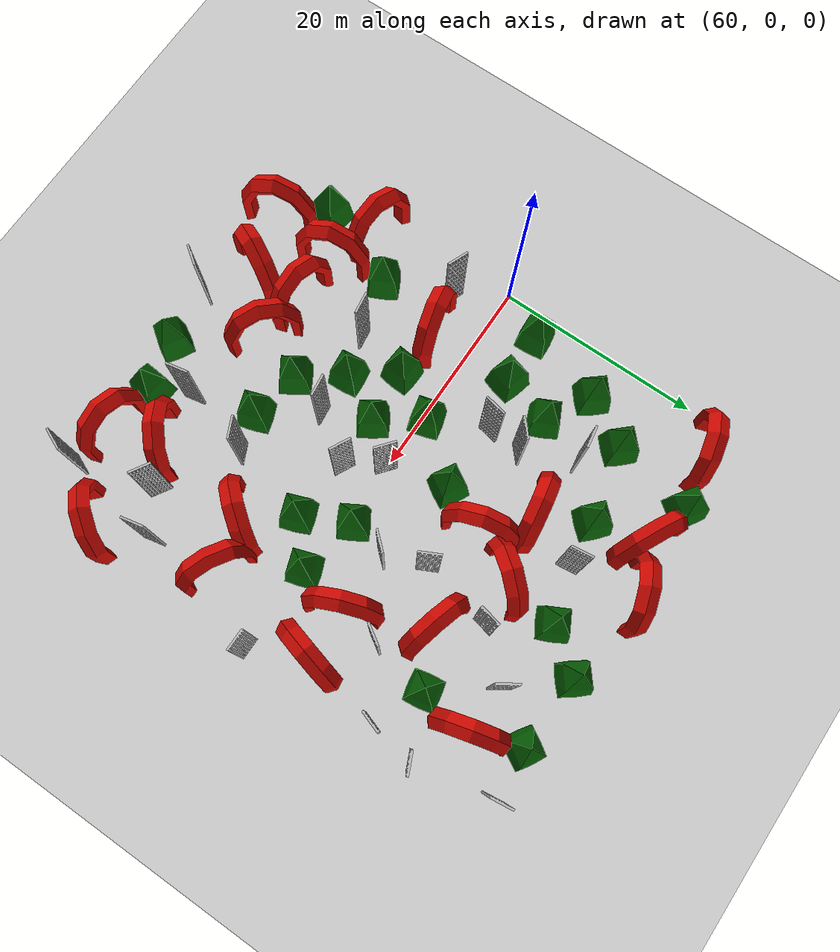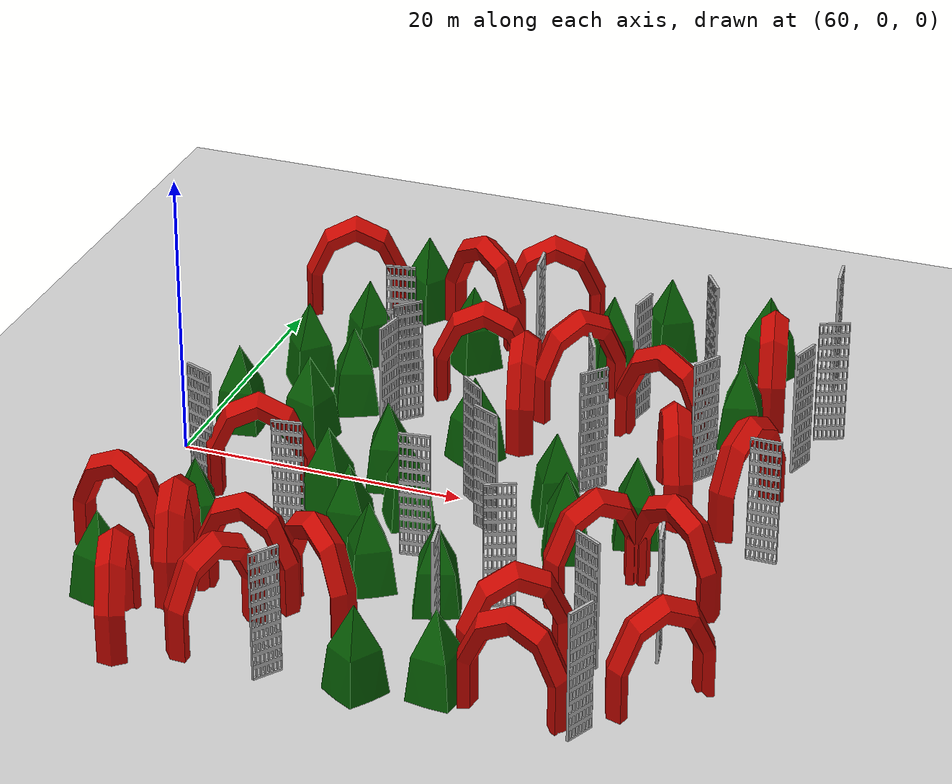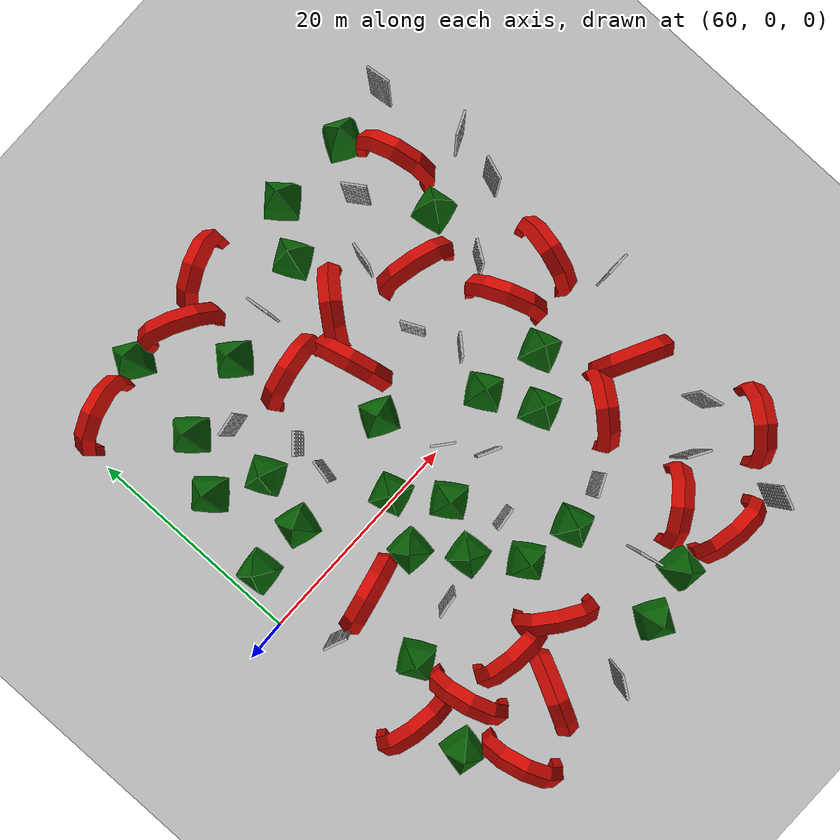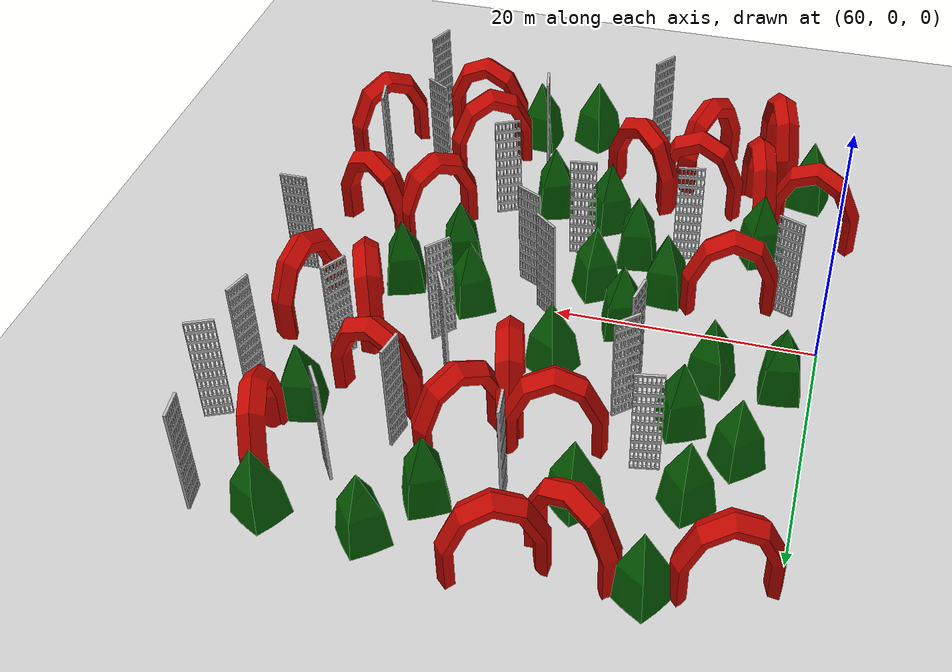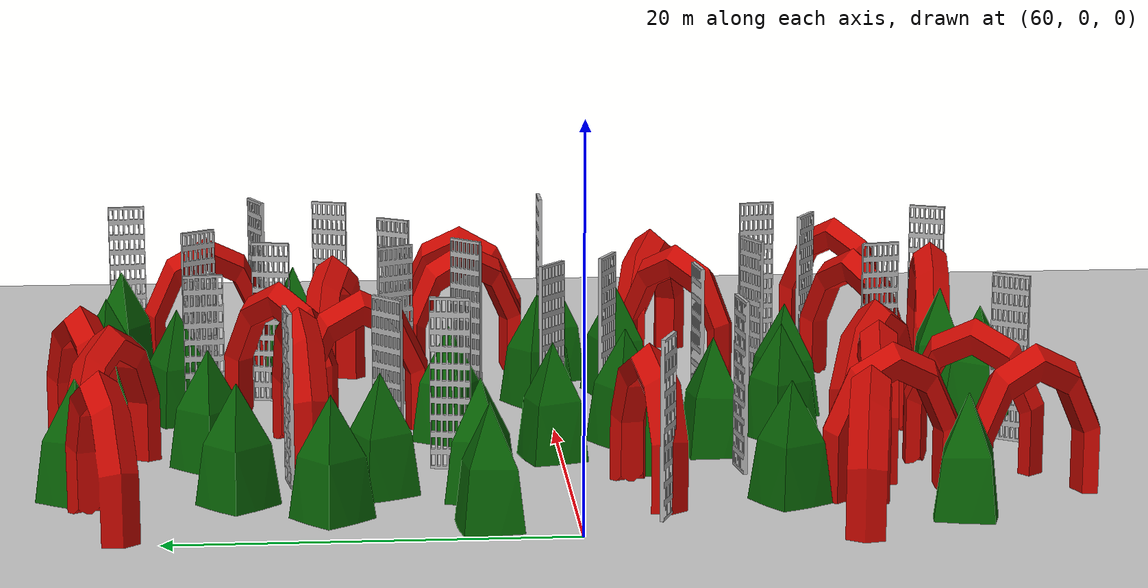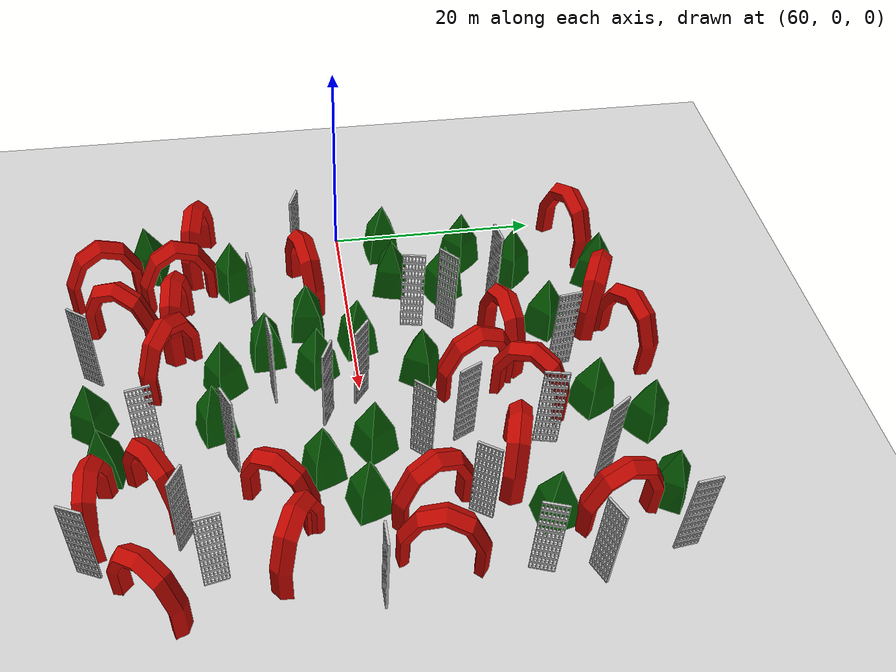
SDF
<sdf version="1.4">
 <world name="default">
  <model name="ground_plane">
   <static>1</static>
   <link name="link">
    <collision name="collision">
     <geometry><plane><normal>0 0 1</normal><size>1000 1000</size></plane></geometry>
     <surface>
      <contact><collide_bitmask>65535</collide_bitmask></contact>
      <friction><ode><mu>100</mu><mu2>50</mu2></ode></friction>
     </surface>
    </collision>
    <visual name="visual">
     <cast_shadows>0</cast_shadows>
     <geometry><plane><normal>0 0 1</normal><size>1000 1000</size></plane></geometry>
    </visual>
   </link>
  </model>
  <include><uri>model://sun</uri></include>
  <include>
   <name>mixedSimple Pyramid22</name>
   <uri>model://Simple Pyramid</uri>
   <pose>62.69142532348633 -18.87360954284668 0 0 0 2.12702026349</pose>
   <static>true</static>
  </include>
  <include>
   <name>mixedSimple U23</name>
   <uri>model://Simple U</uri>
   <pose>61.92953395843506 -13.926939010620117 0 0 0 2.9349056319</pose>
   <static>true</static>
  </include>
  <include>
   <name>mixedfence_high24</name>
   <uri>model://fence_high</uri>
   <pose>62.308427810668945 -3.829996109008789 0 0 0 4.32742791303</pose>
   <static>true</static>
  </include>
  <include>
   <name>mixedSimple Pyramid25</name>
   <uri>model://Simple Pyramid</uri>
   <pose>62.27036476135254 4.362066268920898 0 0 0 0.88870506989</pose>
   <static>true</static>
  </include>
  <include>
   <name>mixedSimple U26</name>
   <uri>model://Simple U</uri>
   <pose>63.4309778213501 22.87826156616211 0 0 0 3.46680885681</pose>
   <static>true</static>
  </include>
  <include>
   <name>mixedSimple U27</name>
   <uri>model://Simple U</uri>
   <pose>65.80026626586914 -22.7959988117218 0 0 0 5.02225994806</pose>
   <static>true</static>
  </include>
  <include>
   <name>mixedSimple U28</name>
   <uri>model://Simple U</uri>
   <pose>66.69957160949707 -15.845399856567383 0 0 0 1.82713218949</pose>
   <static>true</static>
  </include>
  <include>
   <name>mixedSimple Pyramid29</name>
   <uri>model://Simple Pyramid</uri>
   <pose>65.75212478637695 -10.69617748260498 0 0 0 4.42656693664</pose>
   <static>true</static>
  </include>
  <include>
   <name>mixedSimple U30</name>
   <uri>model://Simple U</uri>
   <pose>67.31329727172852 -3.793851852416992 0 0 0 3.36425186606</pose>
   <static>true</static>
  </include>
  <include>
   <name>mixedSimple Pyramid31</name>
   <uri>model://Simple Pyramid</uri>
   <pose>67.38118934631348 4.55036735534668 0 0 0 2.07798212356</pose>
   <static>true</static>
  </include>
  <include>
   <name>mixedSimple Pyramid32</name>
   <uri>model://Simple Pyramid</uri>
   <pose>64.32625675201416 11.917091369628906 0 0 0 4.63348301001</pose>
   <static>true</static>
  </include>
  <include>
   <name>mixedSimple Pyramid33</name>
   <uri>model://Simple Pyramid</uri>
   <pose>67.03865432739258 16.537723541259766 0 0 0 4.6808445286</pose>
   <static>true</static>
  </include>
  <include>
   <name>mixedfence_high34</name>
   <uri>model://fence_high</uri>
   <pose>70.46025276184082 -8.998071670532227 0 0 0 4.851507187</pose>
   <static>true</static>
  </include>
  <include>
   <name>mixedSimple Pyramid35</name>
   <uri>model://Simple Pyramid</uri>
   <pose>68.69615364074707 9.477005004882812 0 0 0 2.80884894409</pose>
   <static>true</static>
  </include>
  <include>
   <name>mixedSimple Pyramid36</name>
   <uri>model://Simple Pyramid</uri>
   <pose>68.5201416015625 24.49709701538086 0 0 0 1.76884780473</pose>
   <static>true</static>
  </include>
  <include>
   <name>mixedSimple U37</name>
   <uri>model://Simple U</uri>
   <pose>71.66048049926758 -21.025667667388916 0 0 0 4.24354867931</pose>
   <static>true</static>
  </include>
  <include>
   <name>mixedSimple U38</name>
   <uri>model://Simple U</uri>
   <pose>71.70149612426758 -16.020835876464844 0 0 0 6.15208009609</pose>
   <static>true</static>
  </include>
  <include>
   <name>mixedSimple Pyramid39</name>
   <uri>model://Simple Pyramid</uri>
   <pose>72.31304740905762 -4.023036956787109 0 0 0 0.703518569848</pose>
   <static>true</static>
  </include>
  <include>
   <name>mixedfence_high40</name>
   <uri>model://fence_high</uri>
   <pose>72.37782096862793 4.839656829833984 0 0 0 6.08317141128</pose>
   <static>true</static>
  </include>
  <include>
   <name>mixedfence_high41</name>
   <uri>model://fence_high</uri>
   <pose>73.69752502441406 9.667533874511719 0 0 0 2.30900363547</pose>
   <static>true</static>
  </include>
  <include>
   <name>mixedfence_high42</name>
   <uri>model://fence_high</uri>
   <pose>71.42465019226074 14.126689910888672 0 0 0 1.73502844009</pose>
   <static>true</static>
  </include>
  <include>
   <name>mixedSimple Pyramid43</name>
   <uri>model://Simple Pyramid</uri>
   <pose>74.32451438903809 18.206005096435547 0 0 0 3.18051259893</pose>
   <static>true</static>
  </include>
  <include>
   <name>mixedSimple U44</name>
   <uri>model://Simple U</uri>
   <pose>73.32940101623535 23.111083984375 0 0 0 5.82010574385</pose>
   <static>true</static>
  </include>
  <include>
   <name>mixedfence_high45</name>
   <uri>model://fence_high</uri>
   <pose>77.01993370056152 -23.087490797042847 0 0 0 2.52240929879</pose>
   <static>true</static>
  </include>
  <include>
   <name>mixedSimple U46</name>
   <uri>model://Simple U</uri>
   <pose>76.65982055664062 -16.70276927947998 0 0 0 2.51738836384</pose>
   <static>true</static>
  </include>
  <include>
   <name>mixedSimple Pyramid47</name>
   <uri>model://Simple Pyramid</uri>
   <pose>75.36297225952148 -7.991411209106445 0 0 0 0.882420831966</pose>
   <static>true</static>
  </include>
  <include>
   <name>mixedSimple Pyramid48</name>
   <uri>model://Simple Pyramid</uri>
   <pose>77.74067497253418 -3.587259292602539 0 0 0 6.07775613799</pose>
   <static>true</static>
  </include>
  <include>
   <name>mixedSimple Pyramid49</name>
   <uri>model://Simple Pyramid</uri>
   <pose>74.78360748291016 0.45078277587890625 0 0 0 2.62721673683</pose>
   <static>true</static>
  </include>
  <include>
   <name>mixedSimple U50</name>
   <uri>model://Simple U</uri>
   <pose>76.83550071716309 13.566654205322266 0 0 0 3.32010996093</pose>
   <static>true</static>
  </include>
  <include>
   <name>mixedSimple U51</name>
   <uri>model://Simple U</uri>
   <pose>78.00121879577637 24.906673431396484 0 0 0 0.398753828221</pose>
   <static>true</static>
  </include>
  <include>
   <name>mixedSimple Pyramid52</name>
   <uri>model://Simple Pyramid</uri>
   <pose>78.36404609680176 -11.99685287475586 0 0 0 6.06434222844</pose>
   <static>true</static>
  </include>
  <include>
   <name>mixedfence_high53</name>
   <uri>model://fence_high</uri>
   <pose>80.86540031433105 -7.661735534667969 0 0 0 1.69620847054</pose>
   <static>true</static>
  </include>
  <include>
   <name>mixedfence_high54</name>
   <uri>model://fence_high</uri>
   <pose>80.12895011901855 0.8111686706542969 0 0 0 4.03280473451</pose>
   <static>true</static>
  </include>
  <include>
   <name>mixedSimple Pyramid55</name>
   <uri>model://Simple Pyramid</uri>
   <pose>78.99737739562988 5.686573028564453 0 0 0 0.252388241747</pose>
   <static>true</static>
  </include>
  <include>
   <name>mixedSimple U56</name>
   <uri>model://Simple U</uri>
   <pose>80.87881088256836 10.324485778808594 0 0 0 4.95401477632</pose>
   <static>true</static>
  </include>
  <include>
   <name>mixedfence_high57</name>
   <uri>model://fence_high</uri>
   <pose>79.1141128540039 19.65850830078125 0 0 0 3.26891451822</pose>
   <static>true</static>
  </include>
  <include>
   <name>mixedSimple Pyramid58</name>
   <uri>model://Simple Pyramid</uri>
   <pose>82.00854873657227 -23.49215269088745 0 0 0 0.224913957299</pose>
   <static>true</static>
  </include>
  <include>
   <name>mixedfence_high59</name>
   <uri>model://fence_high</uri>
   <pose>85.27312088012695 -17.482858180999756 0 0 0 3.33643014413</pose>
   <static>true</static>
  </include>
  <include>
   <name>mixedSimple Pyramid60</name>
   <uri>model://Simple Pyramid</uri>
   <pose>83.28909301757812 -12.887898445129395 0 0 0 1.11440216981</pose>
   <static>true</static>
  </include>
  <include>
   <name>mixedfence_high61</name>
   <uri>model://fence_high</uri>
   <pose>83.86478805541992 -3.655029296875 0 0 0 1.10880368324</pose>
   <static>true</static>
  </include>
  <include>
   <name>mixedSimple U62</name>
   <uri>model://Simple U</uri>
   <pose>83.34615707397461 14.67905044555664 0 0 0 4.0005360816</pose>
   <static>true</static>
  </include>
  <include>
   <name>mixedSimple Pyramid63</name>
   <uri>model://Simple Pyramid</uri>
   <pose>84.07956314086914 20.286457061767578 0 0 0 4.4059240932</pose>
   <static>true</static>
  </include>
  <include>
   <name>mixedSimple Pyramid64</name>
   <uri>model://Simple Pyramid</uri>
   <pose>86.85235595703125 -22.23217749595642 0 0 0 5.38158184151</pose>
   <static>true</static>
  </include>
  <include>
   <name>mixedfence_high65</name>
   <uri>model://fence_high</uri>
   <pose>88.01100540161133 -11.228515625 0 0 0 2.00930985803</pose>
   <static>true</static>
  </include>
  <include>
   <name>mixedSimple Pyramid66</name>
   <uri>model://Simple Pyramid</uri>
   <pose>88.85335922241211 -4.060243606567383 0 0 0 5.85266278867</pose>
   <static>true</static>
  </include>
  <include>
   <name>mixedSimple Pyramid67</name>
   <uri>model://Simple Pyramid</uri>
   <pose>86.66329574584961 0.4944744110107422 0 0 0 1.31368434438</pose>
   <static>true</static>
  </include>
  <include>
   <name>mixedfence_high68</name>
   <uri>model://fence_high</uri>
   <pose>88.62298202514648 5.0998687744140625 0 0 0 2.41085727768</pose>
   <static>true</static>
  </include>
  <include>
   <name>mixedfence_high69</name>
   <uri>model://fence_high</uri>
   <pose>85.98606872558594 9.353893280029297 0 0 0 3.60200401491</pose>
   <static>true</static>
  </include>
  <include>
   <name>mixedfence_high70</name>
   <uri>model://fence_high</uri>
   <pose>88.10047149658203 16.24319076538086 0 0 0 2.93026521238</pose>
   <static>true</static>
  </include>
  <include>
   <name>mixedSimple Pyramid71</name>
   <uri>model://Simple Pyramid</uri>
   <pose>87.08010482788086 24.292301177978516 0 0 0 3.03816952569</pose>
   <static>true</static>
  </include>
  <include>
   <name>mixedSimple U72</name>
   <uri>model://Simple U</uri>
   <pose>91.85182189941406 -22.601258516311646 0 0 0 3.03706974732</pose>
   <static>true</static>
  </include>
  <include>
   <name>mixedSimple U73</name>
   <uri>model://Simple U</uri>
   <pose>90.26428604125977 -17.854705810546875 0 0 0 3.75901752767</pose>
   <static>true</static>
  </include>
  <include>
   <name>mixedSimple U74</name>
   <uri>model://Simple U</uri>
   <pose>92.10469818115234 -7.865346908569336 0 0 0 4.01713577562</pose>
   <static>true</static>
  </include>
  <include>
   <name>mixedSimple U75</name>
   <uri>model://Simple U</uri>
   <pose>90.4052619934082 11.80044937133789 0 0 0 6.02035349855</pose>
   <static>true</static>
  </include>
  <include>
   <name>mixedfence_high76</name>
   <uri>model://fence_high</uri>
   <pose>90.99064254760742 20.329376220703125 0 0 0 3.7314939453</pose>
   <static>true</static>
  </include>
  <include>
   <name>mixedfence_high77</name>
   <uri>model://fence_high</uri>
   <pose>95.0263900756836 -16.31444549560547 0 0 0 1.02889222069</pose>
   <static>true</static>
  </include>
  <include>
   <name>mixedSimple Pyramid78</name>
   <uri>model://Simple Pyramid</uri>
   <pose>92.56683349609375 -0.7046318054199219 0 0 0 1.1169005026</pose>
   <static>true</static>
  </include>
  <include>
   <name>mixedSimple U79</name>
   <uri>model://Simple U</uri>
   <pose>93.57249450683594 4.356660842895508 0 0 0 1.94224429412</pose>
   <static>true</static>
  </include>
  <include>
   <name>mixedfence_high80</name>
   <uri>model://fence_high</uri>
   <pose>95.05394744873047 9.137382507324219 0 0 0 2.56543640807</pose>
   <static>true</static>
  </include>
  <include>
   <name>mixedSimple Pyramid81</name>
   <uri>model://Simple Pyramid</uri>
   <pose>95.32792663574219 14.134880065917969 0 0 0 4.10416851437</pose>
   <static>true</static>
  </include>
  <include>
   <name>mixedSimple Pyramid82</name>
   <uri>model://Simple Pyramid</uri>
   <pose>94.44469833374023 23.951465606689453 0 0 0 0.241169291949</pose>
   <static>true</static>
  </include>
  <include>
   <name>mixedfence_high83</name>
   <uri>model://fence_high</uri>
   <pose>96.85105514526367 -22.36109709739685 0 0 0 2.72230187347</pose>
   <static>true</static>
  </include>
  <include>
   <name>mixedfence_high84</name>
   <uri>model://fence_high</uri>
   <pose>98.03926849365234 -12.31787395477295 0 0 0 3.34759067095</pose>
   <static>true</static>
  </include>
  <include>
   <name>mixedSimple U85</name>
   <uri>model://Simple U</uri>
   <pose>97.01342391967773 -6.888397216796875 0 0 0 5.81386392503</pose>
   <static>true</static>
  </include>
  <include>
   <name>mixedSimple U86</name>
   <uri>model://Simple U</uri>
   <pose>98.57734298706055 4.317827224731445 0 0 0 1.3093945844</pose>
   <static>true</static>
  </include>
  <include>
   <name>mixedSimple U87</name>
   <uri>model://Simple U</uri>
   <pose>96.04931259155273 19.172794342041016 0 0 0 1.81763382215</pose>
   <static>true</static>
  </include>
  <include>
   <name>mixedfence_high88</name>
   <uri>model://fence_high</uri>
   <pose>99.40043258666992 22.890323638916016 0 0 0 0.124840649944</pose>
   <static>true</static>
  </include>
  <include>
   <name>mixedSimple U89</name>
   <uri>model://Simple U</uri>
   <pose>99.80755615234375 -18.32263994216919 0 0 0 3.96873240099</pose>
   <static>true</static>
  </include>
  <include>
   <name>mixedfence_high90</name>
   <uri>model://fence_high</uri>
   <pose>99.9856185913086 -0.48496246337890625 0 0 0 4.71194870415</pose>
   <static>true</static>
  </include>
  <include>
   <name>mixedfence_high91</name>
   <uri>model://fence_high</uri>
   <pose>99.68158340454102 11.043956756591797 0 0 0 5.95966171809</pose>
   <static>true</static>
  </include>
  <include>
   <name>mixedfence_high92</name>
   <uri>model://fence_high</uri>
   <pose>99.95383834838867 16.041545867919922 0 0 0 5.1317420569</pose>
   <static>true</static>
  </include>
 </world>
</sdf>
